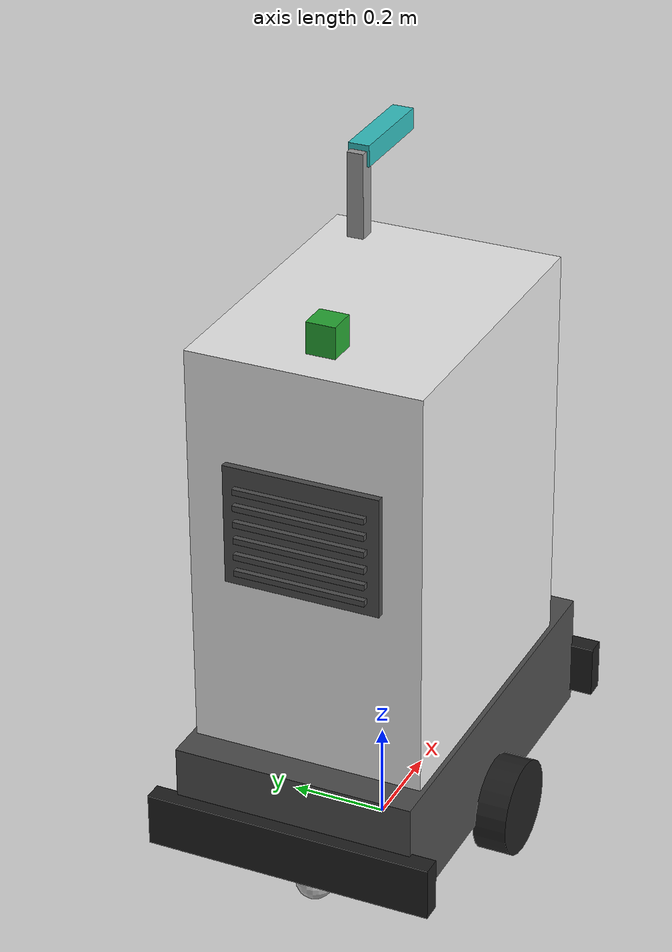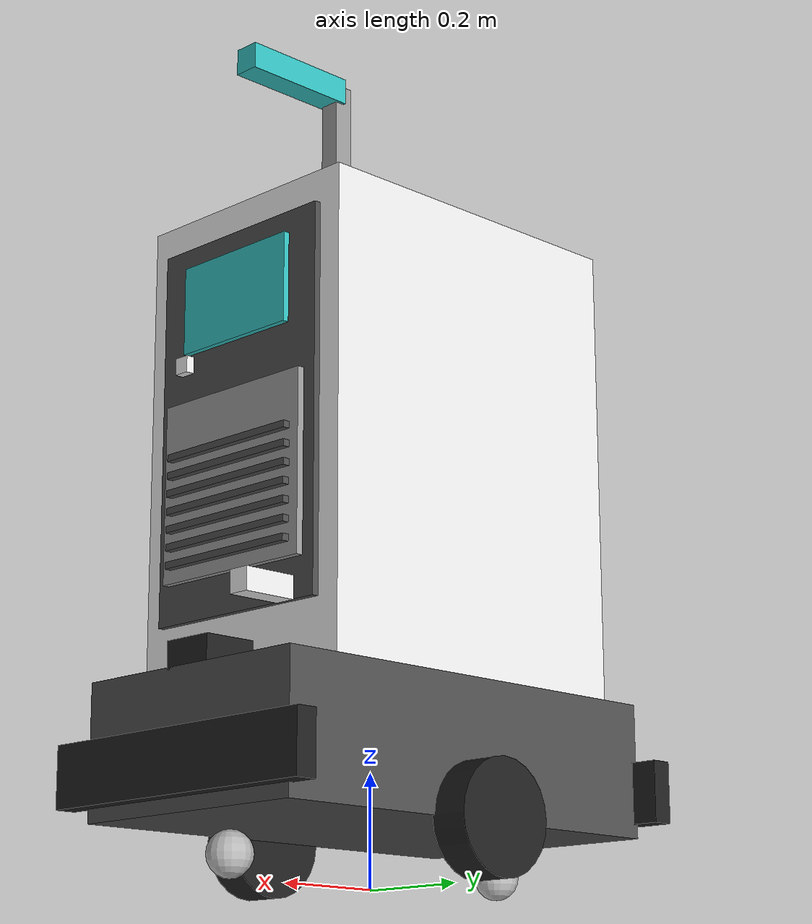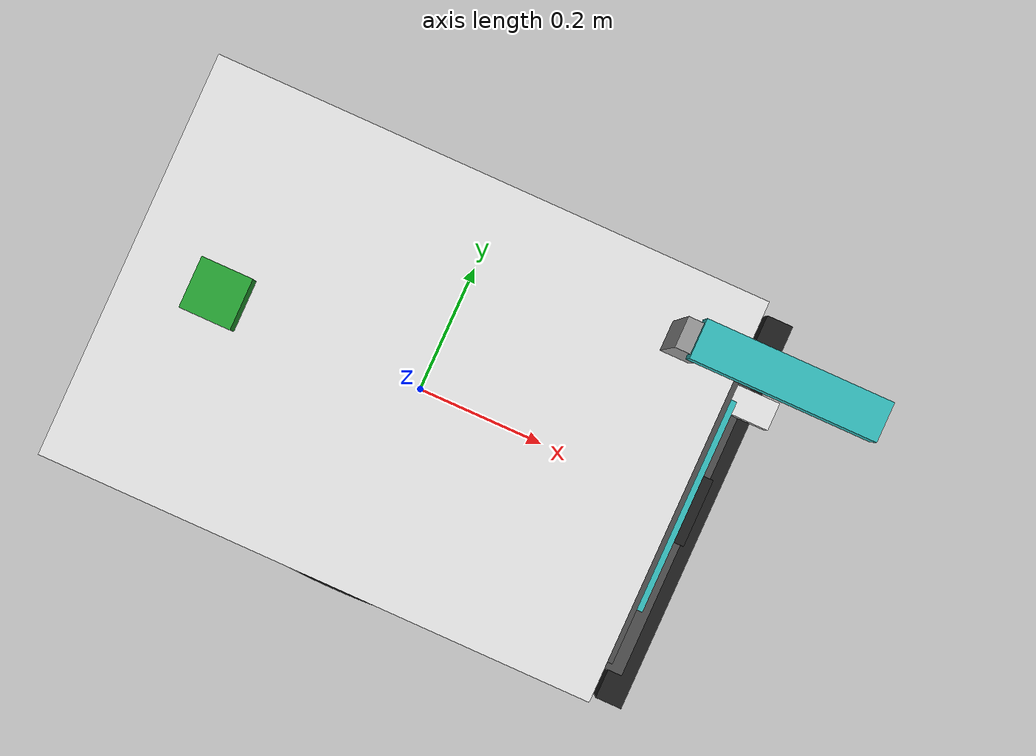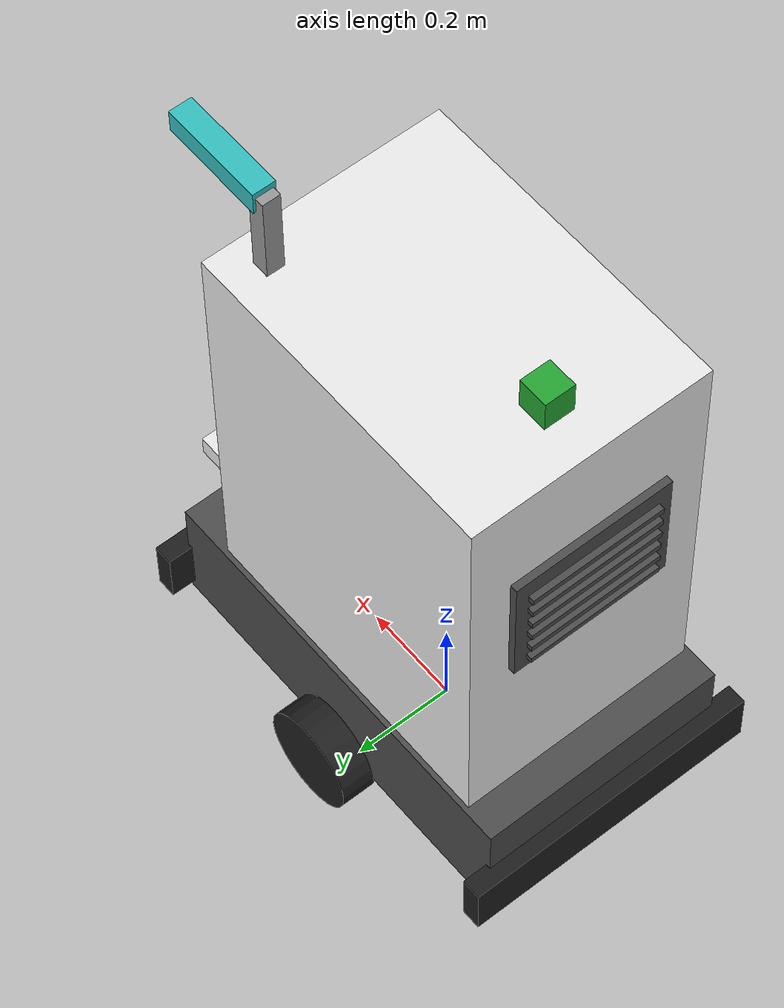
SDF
<sdf version='1.7'>
  <model name='mobile_amc'>
    <link name='base_footprint'>
      <inertial>
        <pose>-0.004304 0.000906 0.400332 0 -0 0</pose>
        <mass>61.8</mass>
        <inertia>
          <ixx>6.89646</ixx>
          <ixy>-0.016641</ixy>
          <ixz>0.0914768</ixz>
          <iyy>8.97816</iyy>
          <iyz>-0.0424614</iyz>
          <izz>4.58284</izz>
        </inertia>
      </inertial>
      <collision name='base_footprint_fixed_joint_lump__analyzer_cabinet_collision'>
        <pose>-0.02 0 0.76 0 -0 0</pose>
        <geometry>
          <box>
            <size>0.66 0.48 0.84</size>
          </box>
        </geometry>
        <surface>
          <contact>
            <ode/>
          </contact>
          <friction>
            <ode/>
          </friction>
        </surface>
      </collision>
      <collision name='base_footprint_fixed_joint_lump__base_link_collision_1'>
        <pose>0 0 0.22 0 -0 0</pose>
        <geometry>
          <box>
            <size>0.84 0.5 0.24</size>
          </box>
        </geometry>
        <surface>
          <contact>
            <ode/>
          </contact>
          <friction>
            <ode/>
          </friction>
        </surface>
      </collision>
      <collision name='base_footprint_fixed_joint_lump__base_scan_collision_2'>
        <pose>0.37 0 0.36 0 -0 0</pose>
        <geometry>
          <box>
            <size>0.1 0.1 0.05</size>
          </box>
        </geometry>
        <surface>
          <contact>
            <ode/>
          </contact>
          <friction>
            <ode/>
          </friction>
        </surface>
      </collision>
      <collision name='base_footprint_fixed_joint_lump__beacon_collision_3'>
        <pose>-0.24 0 1.21 0 -0 0</pose>
        <geometry>
          <box>
            <size>0.06 0.06 0.07</size>
          </box>
        </geometry>
        <surface>
          <contact>
            <ode/>
          </contact>
          <friction>
            <ode/>
          </friction>
        </surface>
      </collision>
      <collision name='base_footprint_fixed_joint_lump__bumper_back_collision_4'>
        <pose>-0.43 0 0.18 0 -0 0</pose>
        <geometry>
          <box>
            <size>0.04 0.6 0.11</size>
          </box>
        </geometry>
        <surface>
          <contact>
            <ode/>
          </contact>
          <friction>
            <ode/>
          </friction>
        </surface>
      </collision>
      <collision name='base_footprint_fixed_joint_lump__bumper_front_collision_5'>
        <pose>0.43 0 0.18 0 -0 0</pose>
        <geometry>
          <box>
            <size>0.04 0.6 0.11</size>
          </box>
        </geometry>
        <surface>
          <contact>
            <ode/>
          </contact>
          <friction>
            <ode/>
          </friction>
        </surface>
      </collision>
      <collision name='base_footprint_fixed_joint_lump__caster_front_collision_6'>
        <pose>0.32 0 0.04 0 -0 0</pose>
        <geometry>
          <sphere>
            <radius>0.04</radius>
          </sphere>
        </geometry>
        <surface>
          <contact>
            <ode/>
          </contact>
          <friction>
            <ode>
              <mu>0.001</mu>
              <mu2>0.001</mu2>
            </ode>
          </friction>
        </surface>
      </collision>
      <collision name='base_footprint_fixed_joint_lump__caster_rear_collision_7'>
        <pose>-0.32 0 0.04 0 -0 0</pose>
        <geometry>
          <sphere>
            <radius>0.04</radius>
          </sphere>
        </geometry>
        <surface>
          <contact>
            <ode/>
          </contact>
          <friction>
            <ode>
              <mu>0.001</mu>
              <mu2>0.001</mu2>
            </ode>
          </friction>
        </surface>
      </collision>
      <collision name='base_footprint_fixed_joint_lump__sampling_inlet_collision_8'>
        <pose>0.345 0.16 1.35 0 -0 0</pose>
        <geometry>
          <box>
            <size>0.21 0.045 0.045</size>
          </box>
        </geometry>
        <surface>
          <contact>
            <ode/>
          </contact>
          <friction>
            <ode/>
          </friction>
        </surface>
      </collision>
      <collision name='base_footprint_fixed_joint_lump__sampling_inlet_low_collision_9'>
        <pose>0.4 0.16 0.45 0 -0 0</pose>
        <geometry>
          <box>
            <size>0.1 0.04 0.04</size>
          </box>
        </geometry>
        <surface>
          <contact>
            <ode/>
          </contact>
          <friction>
            <ode/>
          </friction>
        </surface>
      </collision>
      <collision name='base_footprint_fixed_joint_lump__sampling_mast_collision_10'>
        <pose>0.24 0.16 1.24 0 -0 0</pose>
        <geometry>
          <box>
            <size>0.035 0.035 0.24</size>
          </box>
        </geometry>
        <surface>
          <contact>
            <ode/>
          </contact>
          <friction>
            <ode/>
          </friction>
        </surface>
      </collision>
      <visual name='base_footprint_fixed_joint_lump__analyzer_cabinet_visual'>
        <pose>-0.02 0 0.76 0 -0 0</pose>
        <geometry>
          <box>
            <size>0.66 0.48 0.84</size>
          </box>
        </geometry>
        <material>
          <script>
            <name>Gazebo/White</name>
            <uri>file://media/materials/scripts/gazebo.material</uri>
          </script>
        </material>
      </visual>
      <visual name='base_footprint_fixed_joint_lump__base_link_visual_1'>
        <pose>0 0 0.22 0 -0 0</pose>
        <geometry>
          <box>
            <size>0.84 0.5 0.24</size>
          </box>
        </geometry>
        <material>
          <script>
            <name>Gazebo/DarkGrey</name>
            <uri>file://media/materials/scripts/gazebo.material</uri>
          </script>
        </material>
      </visual>
      <visual name='base_footprint_fixed_joint_lump__base_scan_visual_2'>
        <pose>0.37 0 0.36 0 -0 0</pose>
        <geometry>
          <box>
            <size>0.1 0.1 0.05</size>
          </box>
        </geometry>
        <material>
          <script>
            <name>Gazebo/Black</name>
            <uri>file://media/materials/scripts/gazebo.material</uri>
          </script>
        </material>
      </visual>
      <visual name='base_footprint_fixed_joint_lump__beacon_visual_3'>
        <pose>-0.24 0 1.21 0 -0 0</pose>
        <geometry>
          <box>
            <size>0.06 0.06 0.07</size>
          </box>
        </geometry>
        <material>
          <script>
            <name>Gazebo/Green</name>
            <uri>file://media/materials/scripts/gazebo.material</uri>
          </script>
        </material>
      </visual>
      <visual name='base_footprint_fixed_joint_lump__bumper_back_visual_4'>
        <pose>-0.43 0 0.18 0 -0 0</pose>
        <geometry>
          <box>
            <size>0.04 0.6 0.11</size>
          </box>
        </geometry>
        <material>
          <script>
            <name>Gazebo/Black</name>
            <uri>file://media/materials/scripts/gazebo.material</uri>
          </script>
        </material>
      </visual>
      <visual name='base_footprint_fixed_joint_lump__bumper_front_visual_5'>
        <pose>0.43 0 0.18 0 -0 0</pose>
        <geometry>
          <box>
            <size>0.04 0.6 0.11</size>
          </box>
        </geometry>
        <material>
          <script>
            <name>Gazebo/Black</name>
            <uri>file://media/materials/scripts/gazebo.material</uri>
          </script>
        </material>
      </visual>
      <visual name='base_footprint_fixed_joint_lump__caster_front_visual_6'>
        <pose>0.32 0 0.04 0 -0 0</pose>
        <geometry>
          <sphere>
            <radius>0.04</radius>
          </sphere>
        </geometry>
      </visual>
      <visual name='base_footprint_fixed_joint_lump__caster_rear_visual_7'>
        <pose>-0.32 0 0.04 0 -0 0</pose>
        <geometry>
          <sphere>
            <radius>0.04</radius>
          </sphere>
        </geometry>
      </visual>
      <visual name='base_footprint_fixed_joint_lump__display_visual_8'>
        <pose>0.327 0 1 0 -0 0</pose>
        <geometry>
          <box>
            <size>0.012 0.26 0.16</size>
          </box>
        </geometry>
        <material>
          <script>
            <name>Gazebo/Turquoise</name>
            <uri>file://media/materials/scripts/gazebo.material</uri>
          </script>
        </material>
      </visual>
      <visual name='base_footprint_fixed_joint_lump__exhaust_grille_0_visual_9'>
        <pose>-0.37 0 0.745 0 -0 0</pose>
        <geometry>
          <box>
            <size>0.013 0.27 0.012</size>
          </box>
        </geometry>
        <material>
          <script>
            <name>Gazebo/DarkGrey</name>
            <uri>file://media/materials/scripts/gazebo.material</uri>
          </script>
        </material>
      </visual>
      <visual name='base_footprint_fixed_joint_lump__exhaust_grille_1_visual_10'>
        <pose>-0.37 0 0.78 0 -0 0</pose>
        <geometry>
          <box>
            <size>0.013 0.27 0.012</size>
          </box>
        </geometry>
        <material>
          <script>
            <name>Gazebo/DarkGrey</name>
            <uri>file://media/materials/scripts/gazebo.material</uri>
          </script>
        </material>
      </visual>
      <visual name='base_footprint_fixed_joint_lump__exhaust_grille_2_visual_11'>
        <pose>-0.37 0 0.815 0 -0 0</pose>
        <geometry>
          <box>
            <size>0.013 0.27 0.012</size>
          </box>
        </geometry>
        <material>
          <script>
            <name>Gazebo/DarkGrey</name>
            <uri>file://media/materials/scripts/gazebo.material</uri>
          </script>
        </material>
      </visual>
      <visual name='base_footprint_fixed_joint_lump__exhaust_grille_3_visual_12'>
        <pose>-0.37 0 0.85 0 -0 0</pose>
        <geometry>
          <box>
            <size>0.013 0.27 0.012</size>
          </box>
        </geometry>
        <material>
          <script>
            <name>Gazebo/DarkGrey</name>
            <uri>file://media/materials/scripts/gazebo.material</uri>
          </script>
        </material>
      </visual>
      <visual name='base_footprint_fixed_joint_lump__exhaust_grille_4_visual_13'>
        <pose>-0.37 0 0.885 0 -0 0</pose>
        <geometry>
          <box>
            <size>0.013 0.27 0.012</size>
          </box>
        </geometry>
        <material>
          <script>
            <name>Gazebo/DarkGrey</name>
            <uri>file://media/materials/scripts/gazebo.material</uri>
          </script>
        </material>
      </visual>
      <visual name='base_footprint_fixed_joint_lump__exhaust_grille_5_visual_14'>
        <pose>-0.37 0 0.92 0 -0 0</pose>
        <geometry>
          <box>
            <size>0.013 0.27 0.012</size>
          </box>
        </geometry>
        <material>
          <script>
            <name>Gazebo/DarkGrey</name>
            <uri>file://media/materials/scripts/gazebo.material</uri>
          </script>
        </material>
      </visual>
      <visual name='base_footprint_fixed_joint_lump__filter_cartridge_visual_15'>
        <pose>0.325 0 0.67 0 -0 0</pose>
        <geometry>
          <box>
            <size>0.02 0.34 0.32</size>
          </box>
        </geometry>
        <material>
          <script>
            <name>Gazebo/Grey</name>
            <uri>file://media/materials/scripts/gazebo.material</uri>
          </script>
        </material>
      </visual>
      <visual name='base_footprint_fixed_joint_lump__front_panel_visual_16'>
        <pose>0.315 0 0.78 0 -0 0</pose>
        <geometry>
          <box>
            <size>0.014 0.39 0.68</size>
          </box>
        </geometry>
        <material>
          <script>
            <name>Gazebo/DarkGrey</name>
            <uri>file://media/materials/scripts/gazebo.material</uri>
          </script>
        </material>
      </visual>
      <visual name='base_footprint_fixed_joint_lump__intake_grille_0_visual_17'>
        <pose>0.34 0 0.54 0 -0 0</pose>
        <geometry>
          <box>
            <size>0.016 0.3 0.012</size>
          </box>
        </geometry>
        <material>
          <script>
            <name>Gazebo/DarkGrey</name>
            <uri>file://media/materials/scripts/gazebo.material</uri>
          </script>
        </material>
      </visual>
      <visual name='base_footprint_fixed_joint_lump__intake_grille_1_visual_18'>
        <pose>0.34 0 0.572 0 -0 0</pose>
        <geometry>
          <box>
            <size>0.016 0.3 0.012</size>
          </box>
        </geometry>
        <material>
          <script>
            <name>Gazebo/DarkGrey</name>
            <uri>file://media/materials/scripts/gazebo.material</uri>
          </script>
        </material>
      </visual>
      <visual name='base_footprint_fixed_joint_lump__intake_grille_2_visual_19'>
        <pose>0.34 0 0.604 0 -0 0</pose>
        <geometry>
          <box>
            <size>0.016 0.3 0.012</size>
          </box>
        </geometry>
        <material>
          <script>
            <name>Gazebo/DarkGrey</name>
            <uri>file://media/materials/scripts/gazebo.material</uri>
          </script>
        </material>
      </visual>
      <visual name='base_footprint_fixed_joint_lump__intake_grille_3_visual_20'>
        <pose>0.34 0 0.636 0 -0 0</pose>
        <geometry>
          <box>
            <size>0.016 0.3 0.012</size>
          </box>
        </geometry>
        <material>
          <script>
            <name>Gazebo/DarkGrey</name>
            <uri>file://media/materials/scripts/gazebo.material</uri>
          </script>
        </material>
      </visual>
      <visual name='base_footprint_fixed_joint_lump__intake_grille_4_visual_21'>
        <pose>0.34 0 0.668 0 -0 0</pose>
        <geometry>
          <box>
            <size>0.016 0.3 0.012</size>
          </box>
        </geometry>
        <material>
          <script>
            <name>Gazebo/DarkGrey</name>
            <uri>file://media/materials/scripts/gazebo.material</uri>
          </script>
        </material>
      </visual>
      <visual name='base_footprint_fixed_joint_lump__intake_grille_5_visual_22'>
        <pose>0.34 0 0.7 0 -0 0</pose>
        <geometry>
          <box>
            <size>0.016 0.3 0.012</size>
          </box>
        </geometry>
        <material>
          <script>
            <name>Gazebo/DarkGrey</name>
            <uri>file://media/materials/scripts/gazebo.material</uri>
          </script>
        </material>
      </visual>
      <visual name='base_footprint_fixed_joint_lump__intake_grille_6_visual_23'>
        <pose>0.34 0 0.732 0 -0 0</pose>
        <geometry>
          <box>
            <size>0.016 0.3 0.012</size>
          </box>
        </geometry>
        <material>
          <script>
            <name>Gazebo/DarkGrey</name>
            <uri>file://media/materials/scripts/gazebo.material</uri>
          </script>
        </material>
      </visual>
      <visual name='base_footprint_fixed_joint_lump__molecular_filter_indicator_visual_24'>
        <pose>0.329 -0.13 0.9 0 -0 0</pose>
        <geometry>
          <box>
            <size>0.018 0.03 0.03</size>
          </box>
        </geometry>
        <material>
          <script>
            <name>Gazebo/White</name>
            <uri>file://media/materials/scripts/gazebo.material</uri>
          </script>
        </material>
      </visual>
      <visual name='base_footprint_fixed_joint_lump__rear_exhaust_visual_25'>
        <pose>-0.357 0 0.84 0 -0 0</pose>
        <geometry>
          <box>
            <size>0.015 0.32 0.25</size>
          </box>
        </geometry>
        <material>
          <script>
            <name>Gazebo/DarkGrey</name>
            <uri>file://media/materials/scripts/gazebo.material</uri>
          </script>
        </material>
      </visual>
      <visual name='base_footprint_fixed_joint_lump__sampling_inlet_visual_26'>
        <pose>0.345 0.16 1.35 0 -0 0</pose>
        <geometry>
          <box>
            <size>0.21 0.045 0.045</size>
          </box>
        </geometry>
        <material>
          <script>
            <name>Gazebo/Turquoise</name>
            <uri>file://media/materials/scripts/gazebo.material</uri>
          </script>
        </material>
      </visual>
      <visual name='base_footprint_fixed_joint_lump__sampling_inlet_low_visual_27'>
        <pose>0.4 0.16 0.45 0 -0 0</pose>
        <geometry>
          <box>
            <size>0.1 0.04 0.04</size>
          </box>
        </geometry>
        <material>
          <script>
            <name>Gazebo/White</name>
            <uri>file://media/materials/scripts/gazebo.material</uri>
          </script>
        </material>
      </visual>
      <visual name='base_footprint_fixed_joint_lump__sampling_mast_visual_28'>
        <pose>0.24 0.16 1.24 0 -0 0</pose>
        <geometry>
          <box>
            <size>0.035 0.035 0.24</size>
          </box>
        </geometry>
        <material>
          <script>
            <name>Gazebo/Grey</name>
            <uri>file://media/materials/scripts/gazebo.material</uri>
          </script>
        </material>
      </visual>
      <sensor name='amc_lidar' type='ray'>
        <always_on>1</always_on>
        <update_rate>10</update_rate>
        <visualize>0</visualize>
        <ray>
          <scan>
            <horizontal>
              <samples>720</samples>
              <resolution>1</resolution>
              <min_angle>-3.14159</min_angle>
              <max_angle>3.14159</max_angle>
            </horizontal>
          </scan>
          <range>
            <min>0.12</min>
            <max>12</max>
            <resolution>0.01</resolution>
          </range>
        </ray>
        <plugin name='amc_lidar_ros' filename='libgazebo_ros_ray_sensor.so'>
          <ros>
            <remapping>~/out:=scan</remapping>
          </ros>
          <output_type>sensor_msgs/LaserScan</output_type>
          <frame_name>base_scan</frame_name>
        </plugin>
        <pose>0.37 0 0.36 0 -0 0</pose>
      </sensor>
    </link>
    <joint name='gas_sensor_link_fixed' type='fixed'>
      <pose relative_to='base_footprint'>0 0 0.45 0 -0 0</pose>
      <parent>base_footprint</parent>
      <child>gas_sensor_link</child>
      <axis>
        <dynamics>
          <spring_reference>0</spring_reference>
          <spring_stiffness>0</spring_stiffness>
        </dynamics>
        <xyz>0 0 1</xyz>
        <limit>
          <lower>-1e+16</lower>
          <upper>1e+16</upper>
        </limit>
      </axis>
      <physics>
        <ode>
          <limit>
            <cfm>0</cfm>
            <erp>0.2</erp>
          </limit>
        </ode>
      </physics>
    </joint>
    <link name='gas_sensor_link'>
      <pose relative_to='gas_sensor_link_fixed'>0 0 0 0 -0 0</pose>
      <inertial>
        <pose>0 0 0 0 -0 0</pose>
        <mass>0.02</mass>
        <inertia>
          <ixx>3.75e-06</ixx>
          <ixy>0</ixy>
          <ixz>0</ixz>
          <iyy>3.75e-06</iyy>
          <iyz>0</iyz>
          <izz>4e-06</izz>
        </inertia>
      </inertial>
      <visual name='gas_sensor_link_visual'>
        <pose>0 0 0 0 -0 0</pose>
        <geometry>
          <cylinder>
            <length>0.03</length>
            <radius>0.02</radius>
          </cylinder>
        </geometry>
        <material>
          <script>
            <name>Gazebo/Yellow</name>
            <uri>file://media/materials/scripts/gazebo.material</uri>
          </script>
        </material>
      </visual>
    </link>
    <joint name='wheel_left_joint' type='revolute'>
      <pose relative_to='base_footprint'>0 0.28 0.1 0 -0 0</pose>
      <parent>base_footprint</parent>
      <child>wheel_left_link</child>
      <axis>
        <xyz>0 1 0</xyz>
        <limit>
          <lower>-1e+16</lower>
          <upper>1e+16</upper>
        </limit>
        <dynamics>
          <damping>0.05</damping>
          <friction>0</friction>
          <spring_reference>0</spring_reference>
          <spring_stiffness>0</spring_stiffness>
        </dynamics>
      </axis>
    </joint>
    <link name='wheel_left_link'>
      <pose relative_to='wheel_left_joint'>0 0 0 0 -0 0</pose>
      <inertial>
        <pose>0 0 0 0 -0 0</pose>
        <mass>2</mass>
        <inertia>
          <ixx>0.0058</ixx>
          <ixy>0</ixy>
          <ixz>0</ixz>
          <iyy>0.01</iyy>
          <iyz>0</iyz>
          <izz>0.0058</izz>
        </inertia>
      </inertial>
      <collision name='wheel_left_link_collision'>
        <pose>0 0 0 1.5708 -0 0</pose>
        <geometry>
          <cylinder>
            <length>0.07</length>
            <radius>0.1</radius>
          </cylinder>
        </geometry>
        <surface>
          <contact>
            <ode/>
          </contact>
          <friction>
            <ode>
              <mu>1</mu>
              <mu2>1</mu2>
            </ode>
          </friction>
        </surface>
      </collision>
      <visual name='wheel_left_link_visual'>
        <pose>0 0 0 1.5708 -0 0</pose>
        <geometry>
          <cylinder>
            <length>0.07</length>
            <radius>0.1</radius>
          </cylinder>
        </geometry>
        <material>
          <script>
            <name>Gazebo/Black</name>
            <uri>file://media/materials/scripts/gazebo.material</uri>
          </script>
        </material>
      </visual>
    </link>
    <joint name='wheel_right_joint' type='revolute'>
      <pose relative_to='base_footprint'>0 -0.28 0.1 0 -0 0</pose>
      <parent>base_footprint</parent>
      <child>wheel_right_link</child>
      <axis>
        <xyz>0 1 0</xyz>
        <limit>
          <lower>-1e+16</lower>
          <upper>1e+16</upper>
        </limit>
        <dynamics>
          <damping>0.05</damping>
          <friction>0</friction>
          <spring_reference>0</spring_reference>
          <spring_stiffness>0</spring_stiffness>
        </dynamics>
      </axis>
    </joint>
    <link name='wheel_right_link'>
      <pose relative_to='wheel_right_joint'>0 0 0 0 -0 0</pose>
      <inertial>
        <pose>0 0 0 0 -0 0</pose>
        <mass>2</mass>
        <inertia>
          <ixx>0.0058</ixx>
          <ixy>0</ixy>
          <ixz>0</ixz>
          <iyy>0.01</iyy>
          <iyz>0</iyz>
          <izz>0.0058</izz>
        </inertia>
      </inertial>
      <collision name='wheel_right_link_collision'>
        <pose>0 0 0 1.5708 -0 0</pose>
        <geometry>
          <cylinder>
            <length>0.07</length>
            <radius>0.1</radius>
          </cylinder>
        </geometry>
        <surface>
          <contact>
            <ode/>
          </contact>
          <friction>
            <ode>
              <mu>1</mu>
              <mu2>1</mu2>
            </ode>
          </friction>
        </surface>
      </collision>
      <visual name='wheel_right_link_visual'>
        <pose>0 0 0 1.5708 -0 0</pose>
        <geometry>
          <cylinder>
            <length>0.07</length>
            <radius>0.1</radius>
          </cylinder>
        </geometry>
        <material>
          <script>
            <name>Gazebo/Black</name>
            <uri>file://media/materials/scripts/gazebo.material</uri>
          </script>
        </material>
      </visual>
    </link>
    <static>0</static>
    <plugin name='amc_diff_drive' filename='libgazebo_ros_diff_drive.so'>
      <update_rate>50</update_rate>
      <left_joint>wheel_left_joint</left_joint>
      <right_joint>wheel_right_joint</right_joint>
      <wheel_separation>0.56</wheel_separation>
      <wheel_diameter>0.2</wheel_diameter>
      <max_wheel_torque>35</max_wheel_torque>
      <max_wheel_acceleration>0.6</max_wheel_acceleration>
      <publish_odom>1</publish_odom>
      <publish_odom_tf>1</publish_odom_tf>
      <publish_wheel_tf>0</publish_wheel_tf>
      <odometry_frame>odom</odometry_frame>
      <robot_base_frame>base_footprint</robot_base_frame>
      <odometry_source>1</odometry_source>
    </plugin>
    <plugin name='gas_sensor_plugin' filename='libgas_sensor_plugin.so'>
      <sensor_link_name>gas_sensor_link</sensor_link_name>
      <detector_radius>0.02</detector_radius>
      <sigma>1.5</sigma>
      <update_rate>20.0</update_rate>
    </plugin>
    <plugin name='amc_joint_states' filename='libgazebo_ros_joint_state_publisher.so'>
      <update_rate>30</update_rate>
      <joint_name>wheel_left_joint</joint_name>
      <joint_name>wheel_right_joint</joint_name>
    </plugin>
  </model>
</sdf>
